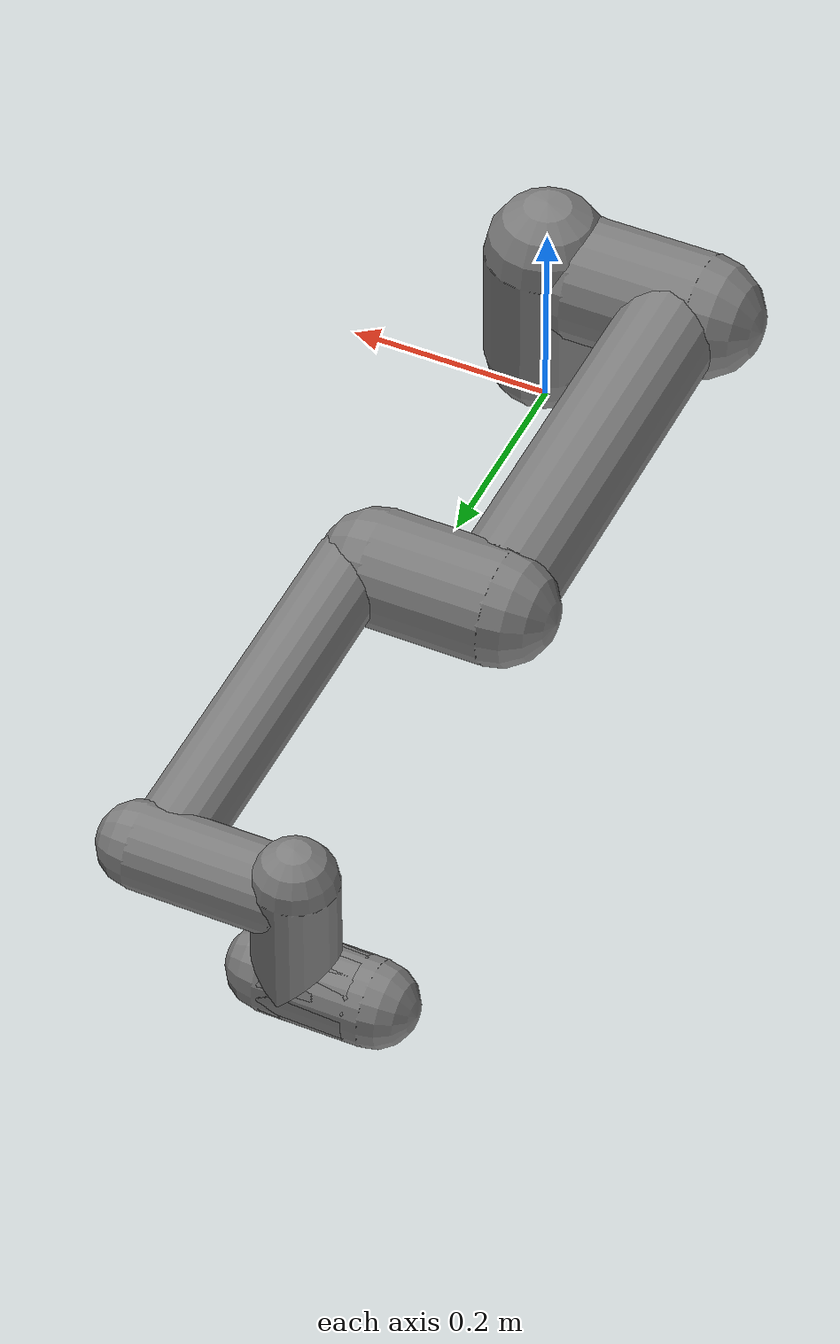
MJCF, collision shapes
<?xml version='1.0' encoding='utf-8'?>
<mujoco model="ur5e">
  <compiler angle="radian" meshdir="assets" autolimits="true" />
  <option integrator="implicitfast" />
  <default>
    <default class="ur5e">
      <default class="visual">
        <geom type="mesh" contype="0" conaffinity="0" group="2" />
      </default>
      <default class="collision">
        <geom type="capsule" group="3" />
        <default class="eef_collision">
          <geom type="cylinder" />
        </default>
      </default>
      <joint axis="0 1 0" range="-6.28319 6.28319" />
      <default class="joint_limited">
        <joint range="-3.1415 3.1415" />
      </default>
      <default class="position">
        <position ctrlrange="-6.2831 6.2831" kp="2000" kv="100" forcerange="-150 150" />
        <default class="position_limited">
          <position ctrlrange="-3.1415 3.1415" />
        </default>
        <default class="position_small">
          <position kp="500" kv="25" forcerange="-28 28" />
        </default>
      </default>
    </default>
  </default>
  <asset>
    <material name="black" rgba="0.033 0.033 0.033 1" />
    <material name="jointgray" rgba="0.278 0.278 0.278 1" />
    <material name="linkgray" rgba="0.82 0.82 0.82 1" />
    <material name="urblue" rgba="0.49 0.678 0.8 1" />
    <mesh file="base_0.obj" />
    <mesh file="base_1.obj" />
    <mesh file="shoulder_0.obj" />
    <mesh file="shoulder_1.obj" />
    <mesh file="shoulder_2.obj" />
    <mesh file="upperarm_0.obj" />
    <mesh file="upperarm_1.obj" />
    <mesh file="upperarm_2.obj" />
    <mesh file="upperarm_3.obj" />
    <mesh file="forearm_0.obj" />
    <mesh file="forearm_1.obj" />
    <mesh file="forearm_2.obj" />
    <mesh file="forearm_3.obj" />
    <mesh file="wrist1_0.obj" />
    <mesh file="wrist1_1.obj" />
    <mesh file="wrist1_2.obj" />
    <mesh file="wrist2_0.obj" />
    <mesh file="wrist2_1.obj" />
    <mesh file="wrist2_2.obj" />
    <mesh file="wrist3.obj" />
  </asset>
  <worldbody>
    <body name="base" quat="1 0 0 1" childclass="ur5e">
      <inertial mass="4" pos="0 0 0" diaginertia="0.00443333156 0.00443333156 0.0072" />
      <geom mesh="base_0" material="black" class="visual" />
      <geom mesh="base_1" material="jointgray" class="visual" />
      <body name="shoulder_link" pos="0 0 0.163">
        <inertial mass="3.76314433393469" pos="3.48564872801904e-09 6.45488025775008e-06 0.00349615578492665" fullinertia="0.00238114580899604 0.00238114530333087 1.35988701424046e-07 0 0 0" />
        <joint name="shoulder_pan" axis="0 0 1" frictionloss="13.3198786870032" damping="9.57508767926301" />
        <geom mesh="shoulder_0" material="urblue" class="visual" />
        <geom mesh="shoulder_1" material="black" class="visual" />
        <geom mesh="shoulder_2" material="jointgray" class="visual" />
        <geom class="collision" size="0.06 0.06" pos="0 0 -0.04" />
        <body name="upper_arm_link" pos="0 0.138 0" quat="1 0 1 0">
          <inertial mass="140.415852668972" pos="-0.000990968143618101 -0.0193163441448193 0.0142281541062296" fullinertia="0.137379267305006 0.319076539754203 0.216113513605439 0.0585045413135921 0.15460493059121 -0.0454743130511861" />
          <joint name="shoulder_lift" frictionloss="5.89416885440174" damping="6.97856381562932" />
          <geom mesh="upperarm_0" material="linkgray" class="visual" />
          <geom mesh="upperarm_1" material="black" class="visual" />
          <geom mesh="upperarm_2" material="jointgray" class="visual" />
          <geom mesh="upperarm_3" material="urblue" class="visual" />
          <geom class="collision" pos="0 -0.04 0" quat="1 1 0 0" size="0.06 0.06" />
          <geom class="collision" size="0.05 0.2" pos="0 0 0.2" />
          <body name="forearm_link" pos="0 -0.131 0.425">
            <inertial mass="1.43810933401384" pos="0.0356009651164481 0.0418574247458284 0.197482692154112" fullinertia="1.05502363512144e-08 1.88484352223184e-08 1.83058175059342e-08 0 0 0" />
            <joint name="elbow" class="joint_limited" frictionloss="8.79158605826971" damping="6.20602342071657" />
            <geom mesh="forearm_0" material="urblue" class="visual" />
            <geom mesh="forearm_1" material="linkgray" class="visual" />
            <geom mesh="forearm_2" material="black" class="visual" />
            <geom mesh="forearm_3" material="jointgray" class="visual" />
            <geom class="collision" pos="0 0.08 0" quat="1 1 0 0" size="0.055 0.06" />
            <geom class="collision" size="0.038 0.19" pos="0 0 0.2" />
            <body name="wrist_1_link" pos="0 0 0.392" quat="1 0 1 0">
              <inertial mass="2.59357794901404" pos="0.00998476330183867 0.163379762010861 0.00513490731643428" fullinertia="5.64223989751866e-09 8.11100386155636e-09 8.56403677140793e-09 0 0 0" />
              <joint name="wrist_1" frictionloss="1.88688051268401" damping="1.35799435113143" />
              <geom mesh="wrist1_0" material="black" class="visual" />
              <geom mesh="wrist1_1" material="urblue" class="visual" />
              <geom mesh="wrist1_2" material="jointgray" class="visual" />
              <geom class="collision" pos="0 0.05 0" quat="1 1 0 0" size="0.04 0.07" />
              <body name="wrist_2_link" pos="0 0.127 0">
                <inertial mass="0.173084611856294" pos="-0.028119830393735 0.0366210291897761 0.0959570612770406" fullinertia="6.73876264431755e-08 8.60369132437821e-08 5.06414503530944e-08 0 0 0" />
                <joint name="wrist_2" axis="0 0 1" frictionloss="1.32620198889296" damping="1.78943818353346" />
                <geom mesh="wrist2_0" material="black" class="visual" />
                <geom mesh="wrist2_1" material="urblue" class="visual" />
                <geom mesh="wrist2_2" material="jointgray" class="visual" />
                <geom class="collision" size="0.04 0.06" pos="0 0 0.04" />
                <geom class="collision" pos="0 0.02 0.1" quat="1 1 0 0" size="0.04 0.04" />
                <body name="wrist_3_link" pos="0 0 0.1">
                  <inertial mass="2.16975057226342" pos="0.013149377109144 0.0814364402927532 0.00243013873446396" fullinertia="0.00249014075718443 0.00253803834679075 0.000301350097064623 -0.000148747716670646 -0.000642406252146262 -0.000547256711653801" />
                  <joint name="wrist_3" frictionloss="1.72381999387903" damping="1.49029746722104" />
                  <geom material="linkgray" mesh="wrist3" class="visual" />
                  <geom name="wrist_3_link" class="collision" pos="0 0.025 0" quat="1 1 0 0" size="0.04 0.05" />
                  <site name="attachment_site" size="0.01" pos="0 0.1 0" quat="-1 1 1 1" rgba="1 0 0 1" group="1" />
                </body>
              </body>
            </body>
          </body>
        </body>
      </body>
    </body>
  </worldbody>
  <actuator>
    <position class="position" name="shoulder_pan" joint="shoulder_pan" />
    <position class="position" name="shoulder_lift" joint="shoulder_lift" />
    <position class="position_limited" name="elbow" joint="elbow" />
    <position class="position_small" name="wrist_1" joint="wrist_1" />
    <position class="position_small" name="wrist_2" joint="wrist_2" />
    <position class="position_small" name="wrist_3" joint="wrist_3" />
  </actuator>
  <keyframe>
    <key name="home" qpos="-1.5708 -1.5708 1.5708 -1.5708 -1.5708 0" ctrl="-1.5708 -1.5708 1.5708 -1.5708 -1.5708 0" />
  </keyframe>
</mujoco>
